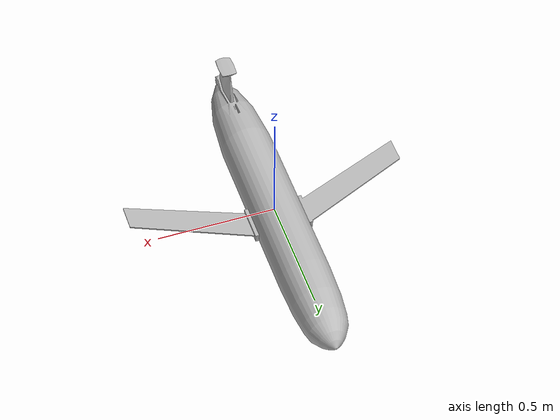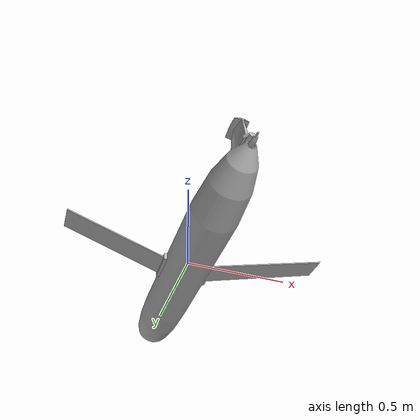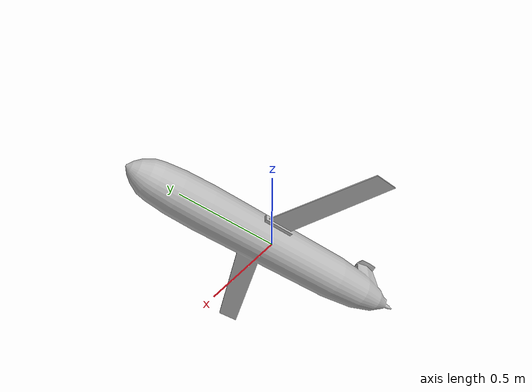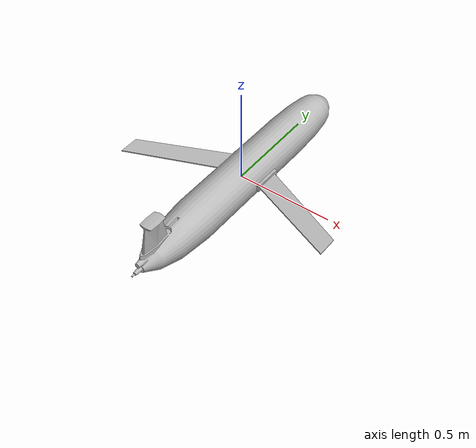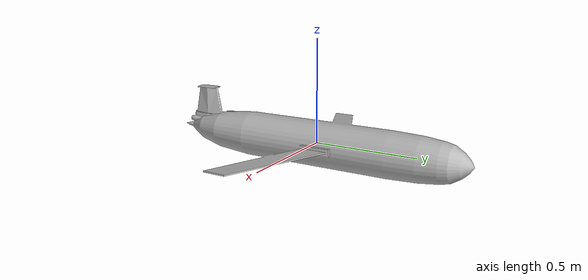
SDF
<?xml version="1.0"?>
<sdf version="1.7">
  <model name="glider_nautilus">

    <static>false</static>
    <link name="base_link">
      <inertial>
        <pose>0 0 0 0 0 0</pose>
        <mass>69.25</mass>
        <inertia>
            <ixx>10</ixx>
            <ixy>0</ixy>
            <ixz>0</ixz>
            <iyy>10</iyy>
            <iyz>0</iyz>
            <izz>10</izz>
        </inertia>
      </inertial>

      <visual name="base_link_visual">
        <pose>0 0 0 0 0 0</pose>
        <geometry>
          <mesh>
            <scale>0.5 0.5 0.5</scale>
            <uri>model://meshes/glider_nautilus/Nautilus-Glider.dae</uri>
          </mesh>
        </geometry>
      </visual>

      <collision name="base_link_collision">
        <pose>0 0 0 0 0 0</pose>
        <geometry>
          <box>
            <size>0.22 1.5 0.22</size>
          </box>
        </geometry>
      </collision>
    </link>

    <link name="imu_link">
      <inertial>
        <pose>0 0 0 0 0 0</pose>
        <mass>0.015</mass>
        <inertia>
          <ixx>0.00001</ixx>
          <ixy>0.0</ixy>
          <ixz>0.0</ixz>
          <iyy>0.00001</iyy>
          <iyz>0.0</iyz>
          <izz>0.00001</izz>
        </inertia>
      </inertial>
      <sensor name="imu_sensor" type="imu">
        <always_on>true</always_on>
        <update_rate>50.0</update_rate>
        <topic>/model/glider_nautilus/imu</topic>
      </sensor>
    </link>

    <joint name="imu_joint" type="fixed">
      <pose>0 0 0 0 0 0</pose>
      <parent>base_link</parent>
      <child>imu_link</child>
    </joint>

    <link name='battery_link'>
      <inertial>
        <pose>0 0 0 0 0 0</pose>
        <mass>0.001</mass>
        <inertia>
          <ixx>1e-05</ixx>
          <ixy>0</ixy>
          <ixz>0</ixz>
          <iyy>1e-05</iyy>
          <iyz>0</iyz>
          <izz>1e-05</izz>
        </inertia>
      </inertial>
      <battery name='battery'>
        <voltage>4.2</voltage>
      </battery>
    </link>

    <joint name='battery_joint' type='fixed'>
      <pose>0 0 0 0 0 0</pose>
      <parent>base_link</parent>
      <child>battery_link</child>
    </joint>

    <plugin
      filename="gz-sim-linearbatteryplugin-system"
      name="gz::sim::systems::LinearBatteryPlugin">
      <battery_name>battery</battery_name>
      <voltage>4.2</voltage>
      <open_circuit_voltage_constant_coef>3.7</open_circuit_voltage_constant_coef>
      <open_circuit_voltage_linear_coef>-3.1424</open_circuit_voltage_linear_coef>
      <initial_charge>4.32</initial_charge>
      <capacity>4.8</capacity>
      <resistance>0.002</resistance>
      <smooth_current_tau>1.9499</smooth_current_tau>
      <enable_recharge>false</enable_recharge>
      <power_load>10</power_load>
      <start_on_motion>true</start_on_motion>
    </plugin>

    <link name="navsat_link">
      <inertial>
        <pose>0 0 0 0 0 0</pose>
        <mass>0.001</mass>
        <inertia>
          <ixx>0.00001</ixx>
          <ixy>0.0</ixy>
          <ixz>0.0</ixz>
          <iyy>0.00001</iyy>
          <iyz>0.0</iyz>
          <izz>0.00001</izz>
        </inertia>
      </inertial>

      <sensor name="navsat_sensor" type="navsat">
        <always_on>true</always_on>
        <update_rate>30.0</update_rate>
        <topic>/model/glider_nautilus/navsat</topic>
      </sensor>
    </link>

    <joint name="navsat_joint" type="fixed">
      <pose>0 0 0 0 0 0</pose>
      <parent>base_link</parent>
      <child>navsat_link</child>
    </joint>

    <plugin
      filename="gz-sim-hydrodynamics-system"
      name="gz::sim::systems::Hydrodynamics">
      <link_name>base_link</link_name>
      <water_density>1027.0</water_density>
      <!-- Added mass -->
      <xDotU>4</xDotU>
      <yDotV>95</yDotV>
      <zDotW>75</zDotW>
      <kDotP>0.4</kDotP>
      <mDotQ>27</mDotQ>
      <nDotR>32</nDotR>

      <!-- Linear Drag Coefficients -->
      <!-- diagonal terms -->
      <xU>-8</xU>
      <yV>-162</yV>
      <zW>-108</zW>
      <kP>-13</kP>
      <mQ>-20</mQ>
      <nR>-32</nR>
      <!-- cross terms -->
      <yR>150</yR>
      <zQ>-100</zQ>
      <mW>37</mW>
      <nV>-34</nV>

      <!-- Quadratic Drag Coefficients -->
      <xUabsU>0</xUabsU>
      <yVabsV>0</yVabsV>
      <zWabsW>0</zWabsW>
      <kPabsP>0</kPabsP>
      <mQabsQ>0</mQabsQ>
      <nRabsR>0</nRabsR>
    </plugin>

    <plugin
      filename="gz-sim-imu-system"
      name="gz::sim::systems::Imu">
    </plugin>

    <plugin
      filename="gz-sim-navsat-system"
      name="gz::sim::systems::NavSat">
    </plugin>

    <plugin
      filename="gz-sim-odometry-publisher-system"
      name="gz::sim::systems::OdometryPublisher">
      <odom_frame>map</odom_frame>
      <robot_base_frame>base_link</robot_base_frame>
      <dimensions>3</dimensions>
      <odom_publish_frequency>100</odom_publish_frequency>
    </plugin>

    <plugin
      filename="gz-sim-joint-state-publisher-system"
      name="gz::sim::systems::JointStatePublisher">
    </plugin>

    <!-- Sea Pressure Sensor Plugin -->
    <plugin
      filename="sea_pressure_sensor"
      name=" dave_gz_sensor_plugins::SubseaPressureSensorPlugin">
      <namespace>glider_nautilus</namespace>
      <topic>sea_pressure</topic>
      <update_rate>10</update_rate>
      <noise_sigma>3.0</noise_sigma>
      <estimate_depth_on>true</estimate_depth_on>
      <standard_pressure>101.325</standard_pressure>
      <kPa_per_meter>9.80638</kPa_per_meter>
    </plugin>

  </model>
</sdf>
